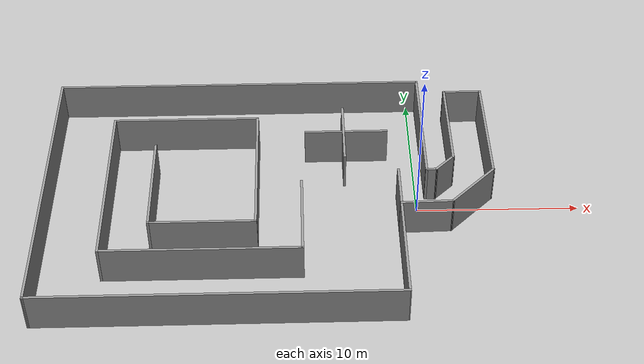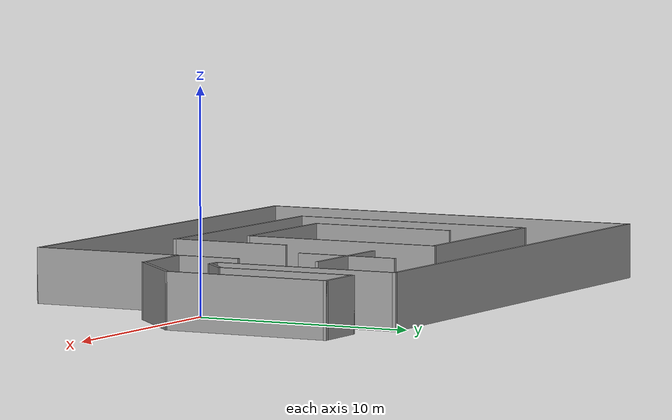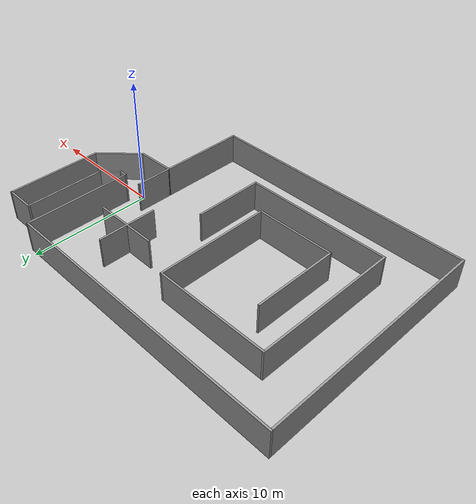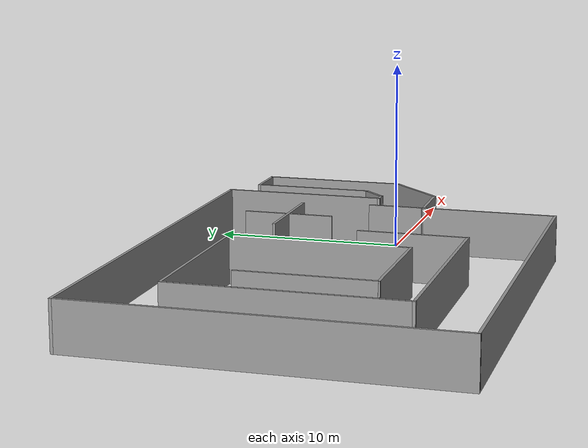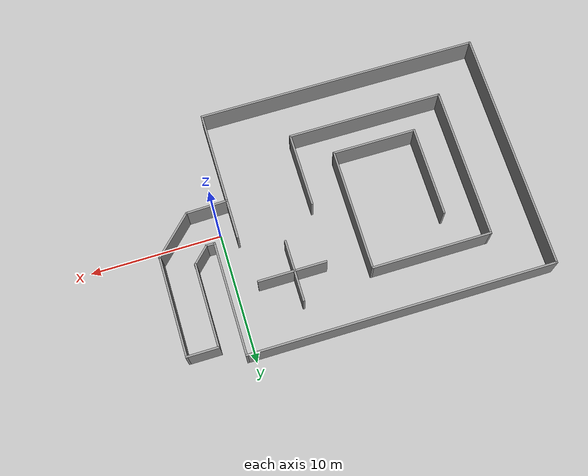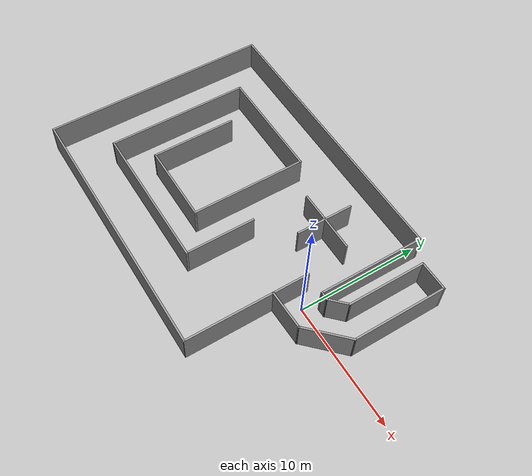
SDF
<?xml version='1.0'?>
<sdf version='1.7'>
  <model name='test_world'>
    <pose>-9.01888 0.435702 0 0 -0 0</pose>
    <link name='Wall_10'>
      <collision name='Wall_10_Collision'>
        <geometry>
          <box>
            <size>0.75 0.15 2.5</size>
          </box>
        </geometry>
        <pose>0 0 1.25 0 -0 0</pose>
      </collision>
      <visual name='Wall_10_Visual'>
        <pose>0 0 1.25 0 -0 0</pose>
        <geometry>
          <box>
            <size>0.75 0.15 2.5</size>
          </box>
        </geometry>
        <material>
          <script>
            <uri>file://media/materials/scripts/gazebo.material</uri>
            <name>Gazebo/Grey</name>
          </script>
          <ambient>1 1 1 1</ambient>
        </material>
        <meta>
          <layer>0</layer>
        </meta>
      </visual>
      <pose>9.91879 0.700013 0 0 -0 3.14159</pose>
    </link>
    <link name='Wall_11'>
      <collision name='Wall_11_Collision'>
        <geometry>
          <box>
            <size>8.75 0.15 2.5</size>
          </box>
        </geometry>
        <pose>0 0 1.25 0 -0 0</pose>
      </collision>
      <visual name='Wall_11_Visual'>
        <pose>0 0 1.25 0 -0 0</pose>
        <geometry>
          <box>
            <size>8.75 0.15 2.5</size>
          </box>
        </geometry>
        <material>
          <script>
            <uri>file://media/materials/scripts/gazebo.material</uri>
            <name>Gazebo/Grey</name>
          </script>
          <ambient>1 1 1 1</ambient>
        </material>
        <meta>
          <layer>0</layer>
        </meta>
      </visual>
      <pose>9.6188 5.00001 0 0 -0 1.5708</pose>
    </link>
    <link name='Wall_12'>
      <collision name='Wall_12_Collision'>
        <geometry>
          <box>
            <size>23.5 0.15 2.5</size>
          </box>
        </geometry>
        <pose>0 0 1.25 0 -0 0</pose>
      </collision>
      <visual name='Wall_12_Visual'>
        <pose>0 0 1.25 0 -0 0</pose>
        <geometry>
          <box>
            <size>23.5 0.15 2.5</size>
          </box>
        </geometry>
        <material>
          <script>
            <uri>file://media/materials/scripts/gazebo.material</uri>
            <name>Gazebo/Grey</name>
          </script>
          <ambient>1 1 1 1</ambient>
        </material>
        <meta>
          <layer>0</layer>
        </meta>
      </visual>
      <pose>-2.0562 9.30001 0 0 -0 3.14159</pose>
    </link>
    <link name='Wall_13'>
      <collision name='Wall_13_Collision'>
        <geometry>
          <box>
            <size>18.75 0.15 2.5</size>
          </box>
        </geometry>
        <pose>0 0 1.25 0 -0 0</pose>
      </collision>
      <visual name='Wall_13_Visual'>
        <pose>0 0 1.25 0 -0 0</pose>
        <geometry>
          <box>
            <size>18.75 0.15 2.5</size>
          </box>
        </geometry>
        <material>
          <script>
            <uri>file://media/materials/scripts/gazebo.material</uri>
            <name>Gazebo/Grey</name>
          </script>
          <ambient>1 1 1 1</ambient>
        </material>
        <meta>
          <layer>0</layer>
        </meta>
      </visual>
      <pose>-13.7312 1.3e-05 0 0 -0 -1.5708</pose>
    </link>
    <link name='Wall_14'>
      <collision name='Wall_14_Collision'>
        <geometry>
          <box>
            <size>21.759 0.15 2.5</size>
          </box>
        </geometry>
        <pose>0 0 1.25 0 -0 0</pose>
      </collision>
      <visual name='Wall_14_Visual'>
        <pose>0 0 1.25 0 -0 0</pose>
        <geometry>
          <box>
            <size>21.759 0.15 2.5</size>
          </box>
        </geometry>
        <material>
          <script>
            <uri>file://media/materials/scripts/gazebo.material</uri>
            <name>Gazebo/Grey</name>
          </script>
          <ambient>1 1 1 1</ambient>
        </material>
        <meta>
          <layer>0</layer>
        </meta>
      </visual>
      <pose>-2.9267 -9.29613 0 0 -0 0.000357</pose>
    </link>
    <link name='Wall_15'>
      <collision name='Wall_15_Collision'>
        <geometry>
          <box>
            <size>7.25 0.15 2.5</size>
          </box>
        </geometry>
        <pose>0 0 1.25 0 -0 0</pose>
      </collision>
      <visual name='Wall_15_Visual'>
        <pose>0 0 1.25 0 -0 0</pose>
        <geometry>
          <box>
            <size>7.25 0.15 2.5</size>
          </box>
        </geometry>
        <material>
          <script>
            <uri>file://media/materials/scripts/gazebo.material</uri>
            <name>Gazebo/Grey</name>
          </script>
          <ambient>1 1 1 1</ambient>
        </material>
        <meta>
          <layer>0</layer>
        </meta>
      </visual>
      <pose>7.87781 -5.74227 0 0 -0 1.5708</pose>
    </link>
    <link name='Wall_17'>
      <collision name='Wall_17_Collision'>
        <geometry>
          <box>
            <size>5.25 0.15 2.5</size>
          </box>
        </geometry>
        <pose>0 0 1.25 0 -0 0</pose>
      </collision>
      <visual name='Wall_17_Visual'>
        <pose>0 0 1.25 0 -0 0</pose>
        <geometry>
          <box>
            <size>5.25 0.15 2.5</size>
          </box>
        </geometry>
        <material>
          <script>
            <uri>file://media/materials/scripts/gazebo.material</uri>
            <name>Gazebo/Grey</name>
          </script>
          <ambient>1 1 1 1</ambient>
        </material>
        <meta>
          <layer>0</layer>
        </meta>
      </visual>
      <pose>4.78878 4.37928 0 0 -0 3.14159</pose>
    </link>
    <link name='Wall_19'>
      <collision name='Wall_19_Collision'>
        <geometry>
          <box>
            <size>4.75 0.15 2.5</size>
          </box>
        </geometry>
        <pose>0 0 1.25 0 -0 0</pose>
      </collision>
      <visual name='Wall_19_Visual'>
        <pose>0 0 1.25 0 -0 0</pose>
        <geometry>
          <box>
            <size>4.75 0.15 2.5</size>
          </box>
        </geometry>
        <material>
          <script>
            <uri>file://media/materials/scripts/gazebo.material</uri>
            <name>Gazebo/Grey</name>
          </script>
          <ambient>1 1 1 1</ambient>
        </material>
        <meta>
          <layer>0</layer>
        </meta>
      </visual>
      <pose>4.62527 4.35037 0 0 -0 -1.5708</pose>
    </link>
    <link name='Wall_2'>
      <collision name='Wall_2_Collision'>
        <geometry>
          <box>
            <size>3.07694 0.15 2.5</size>
          </box>
        </geometry>
        <pose>0 0 1.25 0 -0 0</pose>
      </collision>
      <visual name='Wall_2_Visual'>
        <pose>0 0 1.25 0 -0 0</pose>
        <geometry>
          <box>
            <size>3.07694 0.15 2.5</size>
          </box>
        </geometry>
        <material>
          <script>
            <uri>file://media/materials/scripts/gazebo.material</uri>
            <name>Gazebo/Grey</name>
          </script>
          <ambient>1 1 1 1</ambient>
        </material>
        <meta>
          <layer>0</layer>
        </meta>
      </visual>
      <pose>7.87781 -0.754449 0 0 -0 1.5708</pose>
    </link>
    <link name='Wall_21'>
      <collision name='Wall_21_Collision'>
        <geometry>
          <box>
            <size>5.75 0.15 2.5</size>
          </box>
        </geometry>
        <pose>0 0 1.25 0 -0 0</pose>
      </collision>
      <visual name='Wall_21_Visual'>
        <pose>0 0 1.25 0 -0 0</pose>
        <geometry>
          <box>
            <size>5.75 0.15 2.5</size>
          </box>
        </geometry>
        <material>
          <script>
            <uri>file://media/materials/scripts/gazebo.material</uri>
            <name>Gazebo/Grey</name>
          </script>
          <ambient>1 1 1 1</ambient>
        </material>
        <meta>
          <layer>0</layer>
        </meta>
      </visual>
      <pose>1.91176 -2.9924 0 0 -0 -1.5708</pose>
    </link>
    <link name='Wall_22'>
      <collision name='Wall_22_Collision'>
        <geometry>
          <box>
            <size>12 0.15 2.5</size>
          </box>
        </geometry>
        <pose>0 0 1.25 0 -0 0</pose>
      </collision>
      <visual name='Wall_22_Visual'>
        <pose>0 0 1.25 0 -0 0</pose>
        <geometry>
          <box>
            <size>12 0.15 2.5</size>
          </box>
        </geometry>
        <material>
          <script>
            <uri>file://media/materials/scripts/gazebo.material</uri>
            <name>Gazebo/Grey</name>
          </script>
          <ambient>1 1 1 1</ambient>
        </material>
        <meta>
          <layer>0</layer>
        </meta>
      </visual>
      <pose>-4.01324 -5.79239 0 0 -0 3.14159</pose>
    </link>
    <link name='Wall_23'>
      <collision name='Wall_23_Collision'>
        <geometry>
          <box>
            <size>11.75 0.15 2.5</size>
          </box>
        </geometry>
        <pose>0 0 1.25 0 -0 0</pose>
      </collision>
      <visual name='Wall_23_Visual'>
        <pose>0 0 1.25 0 -0 0</pose>
        <geometry>
          <box>
            <size>11.75 0.15 2.5</size>
          </box>
        </geometry>
        <material>
          <script>
            <uri>file://media/materials/scripts/gazebo.material</uri>
            <name>Gazebo/Grey</name>
          </script>
          <ambient>1 1 1 1</ambient>
        </material>
        <meta>
          <layer>0</layer>
        </meta>
      </visual>
      <pose>-9.93825 0.007605 0 0 -0 1.5708</pose>
    </link>
    <link name='Wall_24'>
      <collision name='Wall_24_Collision'>
        <geometry>
          <box>
            <size>9.25 0.15 2.5</size>
          </box>
        </geometry>
        <pose>0 0 1.25 0 -0 0</pose>
      </collision>
      <visual name='Wall_24_Visual'>
        <pose>0 0 1.25 0 -0 0</pose>
        <geometry>
          <box>
            <size>9.25 0.15 2.5</size>
          </box>
        </geometry>
        <material>
          <script>
            <uri>file://media/materials/scripts/gazebo.material</uri>
            <name>Gazebo/Grey</name>
          </script>
          <ambient>1 1 1 1</ambient>
        </material>
        <meta>
          <layer>0</layer>
        </meta>
      </visual>
      <pose>-5.38824 5.8076 0 0 -0 0</pose>
    </link>
    <link name='Wall_25'>
      <collision name='Wall_25_Collision'>
        <geometry>
          <box>
            <size>9.5 0.15 2.5</size>
          </box>
        </geometry>
        <pose>0 0 1.25 0 -0 0</pose>
      </collision>
      <visual name='Wall_25_Visual'>
        <pose>0 0 1.25 0 -0 0</pose>
        <geometry>
          <box>
            <size>9.5 0.15 2.5</size>
          </box>
        </geometry>
        <material>
          <script>
            <uri>file://media/materials/scripts/gazebo.material</uri>
            <name>Gazebo/Grey</name>
          </script>
          <ambient>1 1 1 1</ambient>
        </material>
        <meta>
          <layer>0</layer>
        </meta>
      </visual>
      <pose>-0.838245 1.13261 0 0 -0 -1.5708</pose>
    </link>
    <link name='Wall_26'>
      <collision name='Wall_26_Collision'>
        <geometry>
          <box>
            <size>6.5 0.15 2.5</size>
          </box>
        </geometry>
        <pose>0 0 1.25 0 -0 0</pose>
      </collision>
      <visual name='Wall_26_Visual'>
        <pose>0 0 1.25 0 -0 0</pose>
        <geometry>
          <box>
            <size>6.5 0.15 2.5</size>
          </box>
        </geometry>
        <material>
          <script>
            <uri>file://media/materials/scripts/gazebo.material</uri>
            <name>Gazebo/Grey</name>
          </script>
          <ambient>1 1 1 1</ambient>
        </material>
        <meta>
          <layer>0</layer>
        </meta>
      </visual>
      <pose>-4.01324 -3.54239 0 0 -0 3.14159</pose>
    </link>
    <link name='Wall_27'>
      <collision name='Wall_27_Collision'>
        <geometry>
          <box>
            <size>7 0.15 2.5</size>
          </box>
        </geometry>
        <pose>0 0 1.25 0 -0 0</pose>
      </collision>
      <visual name='Wall_27_Visual'>
        <pose>0 0 1.25 0 -0 0</pose>
        <geometry>
          <box>
            <size>7 0.15 2.5</size>
          </box>
        </geometry>
        <material>
          <script>
            <uri>file://media/materials/scripts/gazebo.material</uri>
            <name>Gazebo/Grey</name>
          </script>
          <ambient>1 1 1 1</ambient>
        </material>
        <meta>
          <layer>0</layer>
        </meta>
      </visual>
      <pose>-7.18825 -0.117395 0 0 -0 1.5708</pose>
    </link>
    <link name='Wall_4'>
      <collision name='Wall_4_Collision'>
        <geometry>
          <box>
            <size>3.25 0.15 2.5</size>
          </box>
        </geometry>
        <pose>0 0 1.25 0 -0 0</pose>
      </collision>
      <visual name='Wall_4_Visual'>
        <pose>0 0 1.25 0 -0 0</pose>
        <geometry>
          <box>
            <size>3.25 0.15 2.5</size>
          </box>
        </geometry>
        <material>
          <script>
            <uri>file://media/materials/scripts/gazebo.material</uri>
            <name>Gazebo/Grey</name>
          </script>
          <ambient>1 1 1 1</ambient>
        </material>
        <meta>
          <layer>0</layer>
        </meta>
      </visual>
      <pose>9.4278 -2.17945 0 0 -0 0.024815</pose>
    </link>
    <link name='Wall_5'>
      <collision name='Wall_5_Collision'>
        <geometry>
          <box>
            <size>4 0.15 2.5</size>
          </box>
        </geometry>
        <pose>0 0 1.25 0 -0 0</pose>
      </collision>
      <visual name='Wall_5_Visual'>
        <pose>0 0 1.25 0 -0 0</pose>
        <geometry>
          <box>
            <size>4 0.15 2.5</size>
          </box>
        </geometry>
        <material>
          <script>
            <uri>file://media/materials/scripts/gazebo.material</uri>
            <name>Gazebo/Grey</name>
          </script>
          <ambient>1 1 1 1</ambient>
        </material>
        <meta>
          <layer>0</layer>
        </meta>
      </visual>
      <pose>12.339 -0.779797 0 0 -0 0.785398</pose>
    </link>
    <link name='Wall_6'>
      <collision name='Wall_6_Collision'>
        <geometry>
          <box>
            <size>7.75 0.15 2.5</size>
          </box>
        </geometry>
        <pose>0 0 1.25 0 -0 0</pose>
      </collision>
      <visual name='Wall_6_Visual'>
        <pose>0 0 1.25 0 -0 0</pose>
        <geometry>
          <box>
            <size>7.75 0.15 2.5</size>
          </box>
        </geometry>
        <material>
          <script>
            <uri>file://media/materials/scripts/gazebo.material</uri>
            <name>Gazebo/Grey</name>
          </script>
          <ambient>1 1 1 1</ambient>
        </material>
        <meta>
          <layer>0</layer>
        </meta>
      </visual>
      <pose>13.7002 4.38138 0 0 -0 1.5708</pose>
    </link>
    <link name='Wall_7'>
      <collision name='Wall_7_Collision'>
        <geometry>
          <box>
            <size>2.5 0.15 2.5</size>
          </box>
        </geometry>
        <pose>0 0 1.25 0 -0 0</pose>
      </collision>
      <visual name='Wall_7_Visual'>
        <pose>0 0 1.25 0 -0 0</pose>
        <geometry>
          <box>
            <size>2.5 0.15 2.5</size>
          </box>
        </geometry>
        <material>
          <script>
            <uri>file://media/materials/scripts/gazebo.material</uri>
            <name>Gazebo/Grey</name>
          </script>
          <ambient>1 1 1 1</ambient>
        </material>
        <meta>
          <layer>0</layer>
        </meta>
      </visual>
      <pose>12.5252 8.18138 0 0 -0 3.14159</pose>
    </link>
    <link name='Wall_8'>
      <collision name='Wall_8_Collision'>
        <geometry>
          <box>
            <size>6.5 0.15 2.5</size>
          </box>
        </geometry>
        <pose>0 0 1.25 0 -0 0</pose>
      </collision>
      <visual name='Wall_8_Visual'>
        <pose>0 0 1.25 0 -0 0</pose>
        <geometry>
          <box>
            <size>6.5 0.15 2.5</size>
          </box>
        </geometry>
        <material>
          <script>
            <uri>file://media/materials/scripts/gazebo.material</uri>
            <name>Gazebo/Grey</name>
          </script>
          <ambient>1 1 1 1</ambient>
        </material>
        <meta>
          <layer>0</layer>
        </meta>
      </visual>
      <pose>11.3502 5.00638 0 0 -0 -1.5708</pose>
    </link>
    <link name='Wall_9'>
      <collision name='Wall_9_Collision'>
        <geometry>
          <box>
            <size>1.75 0.15 2.5</size>
          </box>
        </geometry>
        <pose>0 0 1.25 0 -0 0</pose>
      </collision>
      <visual name='Wall_9_Visual'>
        <pose>0 0 1.25 0 -0 0</pose>
        <geometry>
          <box>
            <size>1.75 0.15 2.5</size>
          </box>
        </geometry>
        <material>
          <script>
            <uri>file://media/materials/scripts/gazebo.material</uri>
            <name>Gazebo/Grey</name>
          </script>
          <ambient>1 1 1 1</ambient>
        </material>
        <meta>
          <layer>0</layer>
        </meta>
      </visual>
      <pose>10.7845 1.2657 0 0 -0 -2.35619</pose>
    </link>
    <static>1</static>
  </model>
</sdf>
